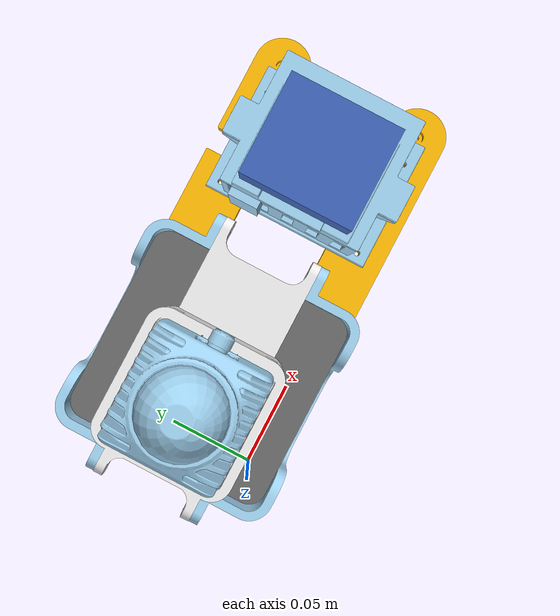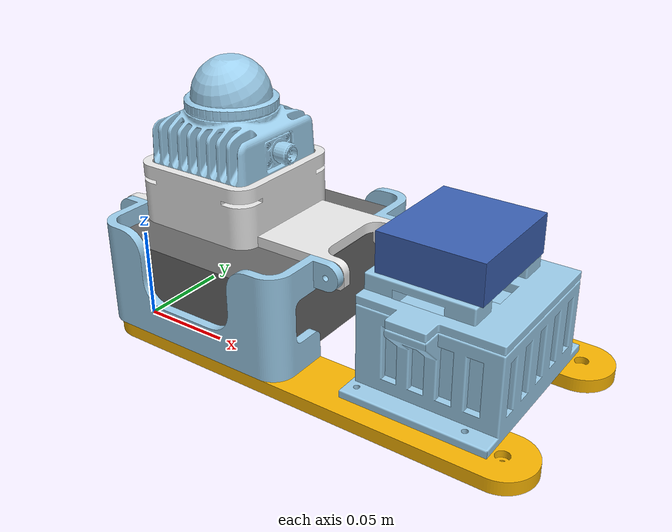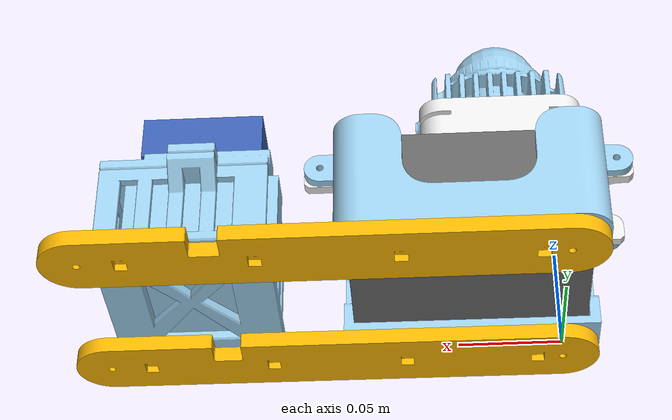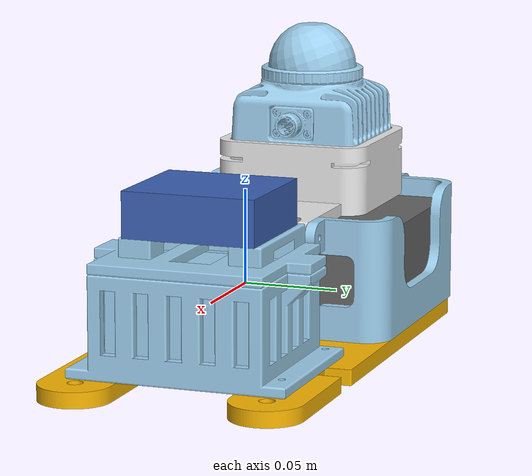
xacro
<robot xmlns:xacro="http://www.ros.org/wiki/xacro" name="onshape">
<!-- Generated using onshape-to-robot -->
    <link name="nuc_top">
        <inertial>
            <origin xyz="0.0900752 0.04556 0.0470702" rpy="0 0 0"/>
            <mass value="1.55055"/>
            <inertia ixx="0.00269047" ixy="7.5858e-05" ixz="0.000944732" iyy="0.00919912" iyz="-1.44756e-05" izz="0.00855227"/>
        </inertial>
        <!-- Part nuc_top -->
        <visual>
            <origin xyz="-0.018 0.0175 0.059" rpy="3.14159 -0 0"/>
            <geometry>
                <mesh filename="file://$(find legged_perceptive_description)/urdf/nuc_and_lidar/nuc_top.stl"/>
            </geometry>
            <material name="nuc_top_material">
                <color rgba="0.917647 0.917647 0.917647 1.0"/>
            </material>
        </visual>
        <collision>
            <origin xyz="-0.018 0.0175 0.059" rpy="3.14159 -0 0"/>
            <geometry>
                <mesh filename="file://$(find legged_perceptive_description)/urdf/nuc_and_lidar/nuc_top.stl"/>
            </geometry>
        </collision>
        <!-- Part mid-360_lidar_unit -->
        <visual>
            <origin xyz="0.027 0.0460004 0.0816128" rpy="6.12323e-17 4.20935e-14 -1.71018e-46"/>
            <geometry>
                <mesh filename="file://$(find legged_perceptive_description)/urdf/nuc_and_lidar/mid_360_lidar_unit.stl"/>
            </geometry>
            <material name="mid-360_lidar_unit_material">
                <color rgba="0.615686 0.811765 0.929412 1.0"/>
            </material>
        </visual>
        <collision>
            <origin xyz="0.027 0.0460004 0.0816128" rpy="6.12323e-17 4.20935e-14 -1.71018e-46"/>
            <geometry>
                <mesh filename="file://$(find legged_perceptive_description)/urdf/nuc_and_lidar/mid_360_lidar_unit.stl"/>
            </geometry>
        </collision>
        <!-- Part voltageregulatormount -->
        <visual>
            <origin xyz="0.1705 0.046 0.049" rpy="1.01161e-46 -2.30521e-16 -3.14159"/>
            <geometry>
                <mesh filename="file://$(find legged_perceptive_description)/urdf/nuc_and_lidar/voltageregulatormount.stl"/>
            </geometry>
            <material name="voltageregulatormount_material">
                <color rgba="0.615686 0.811765 0.929412 1.0"/>
            </material>
        </visual>
        <collision>
            <origin xyz="0.1705 0.046 0.049" rpy="1.01161e-46 -2.30521e-16 -3.14159"/>
            <geometry>
                <mesh filename="file://$(find legged_perceptive_description)/urdf/nuc_and_lidar/voltageregulatormount.stl"/>
            </geometry>
        </collision>
        <!-- Part nuc -->
        <visual>
            <origin xyz="0.044 0.046 0.05" rpy="3.14159 -0 -1.5708"/>
            <geometry>
                <mesh filename="file://$(find legged_perceptive_description)/urdf/nuc_and_lidar/nuc.stl"/>
            </geometry>
            <material name="nuc_material">
                <color rgba="0.4 0.4 0.4 1.0"/>
            </material>
        </visual>
        <collision>
            <origin xyz="0.044 0.046 0.05" rpy="3.14159 -0 -1.5708"/>
            <geometry>
                <mesh filename="file://$(find legged_perceptive_description)/urdf/nuc_and_lidar/nuc.stl"/>
            </geometry>
        </collision>
        <!-- Part nuc_enclosure_side -->
        <visual>
            <origin xyz="0.1175 0.092 -2.60209e-18" rpy="0 -0 3.14159"/>
            <geometry>
                <mesh filename="file://$(find legged_perceptive_description)/urdf/nuc_and_lidar/nuc_enclosure_side.stl"/>
            </geometry>
            <material name="nuc_enclosure_side_material">
                <color rgba="0.615686 0.811765 0.929412 1.0"/>
            </material>
        </visual>
        <collision>
            <origin xyz="0.1175 0.092 -2.60209e-18" rpy="0 -0 3.14159"/>
            <geometry>
                <mesh filename="file://$(find legged_perceptive_description)/urdf/nuc_and_lidar/nuc_enclosure_side.stl"/>
            </geometry>
        </collision>
        <!-- Part nuc_enclosure_side_2 -->
        <visual>
            <origin xyz="-0.0305 5.58794e-11 0" rpy="0 -0 0"/>
            <geometry>
                <mesh filename="file://$(find legged_perceptive_description)/urdf/nuc_and_lidar/nuc_enclosure_side.stl"/>
            </geometry>
            <material name="nuc_enclosure_side_2_material">
                <color rgba="0.615686 0.811765 0.929412 1.0"/>
            </material>
        </visual>
        <collision>
            <origin xyz="-0.0305 5.58794e-11 0" rpy="0 -0 0"/>
            <geometry>
                <mesh filename="file://$(find legged_perceptive_description)/urdf/nuc_and_lidar/nuc_enclosure_side.stl"/>
            </geometry>
        </collision>
        <!-- Part mounting_rail -->
        <visual>
            <origin xyz="0.10975 0.0745 -2.60209e-18" rpy="-6.16298e-33 -1.2326e-32 -2.77556e-17"/>
            <geometry>
                <mesh filename="file://$(find legged_perceptive_description)/urdf/nuc_and_lidar/mounting_rail.stl"/>
            </geometry>
            <material name="mounting_rail_material">
                <color rgba="0.980392 0.713725 0.00392157 1.0"/>
            </material>
        </visual>
        <collision>
            <origin xyz="0.10975 0.0745 -2.60209e-18" rpy="-6.16298e-33 -1.2326e-32 -2.77556e-17"/>
            <geometry>
                <mesh filename="file://$(find legged_perceptive_description)/urdf/nuc_and_lidar/mounting_rail.stl"/>
            </geometry>
        </collision>
        <!-- Part psu -->
        <visual>
            <origin xyz="0.169134 0.046 0.063" rpy="-2.30521e-16 -1.01161e-46 -1.5708"/>
            <geometry>
                <mesh filename="file://$(find legged_perceptive_description)/urdf/nuc_and_lidar/psu.stl"/>
            </geometry>
            <material name="psu_material">
                <color rgba="0.231373 0.380392 0.705882 1.0"/>
            </material>
        </visual>
        <collision>
            <origin xyz="0.169134 0.046 0.063" rpy="-2.30521e-16 -1.01161e-46 -1.5708"/>
            <geometry>
                <mesh filename="file://$(find legged_perceptive_description)/urdf/nuc_and_lidar/psu.stl"/>
            </geometry>
        </collision>
        <!-- Part battery -->
        <visual>
            <origin xyz="0.1725 0.008 0.026" rpy="-1.5708 2.30521e-16 0"/>
            <geometry>
                <mesh filename="file://$(find legged_perceptive_description)/urdf/nuc_and_lidar/battery.stl"/>
            </geometry>
            <material name="battery_material">
                <color rgba="0.615686 0.811765 0.929412 1.0"/>
            </material>
        </visual>
        <collision>
            <origin xyz="0.1725 0.008 0.026" rpy="-1.5708 2.30521e-16 0"/>
            <geometry>
                <mesh filename="file://$(find legged_perceptive_description)/urdf/nuc_and_lidar/battery.stl"/>
            </geometry>
        </collision>
        <!-- Part frame -->
        <visual>
            <origin xyz="0.027 0.0460605 0.1336" rpy="-3.14159 2.43709e-17 3.14159"/>
            <geometry>
                <mesh filename="file://$(find legged_perceptive_description)/urdf/nuc_and_lidar/frame.stl"/>
            </geometry>
            <material name="frame_material">
                <color rgba="0.615686 0.811765 0.929412 1.0"/>
            </material>
        </visual>
        <collision>
            <origin xyz="0.027 0.0460605 0.1336" rpy="-3.14159 2.43709e-17 3.14159"/>
            <geometry>
                <mesh filename="file://$(find legged_perceptive_description)/urdf/nuc_and_lidar/frame.stl"/>
            </geometry>
        </collision>
        <!-- Part mounting_rail_2 -->
        <visual>
            <origin xyz="0.10975 -0.0175 0" rpy="0 -0 0"/>
            <geometry>
                <mesh filename="file://$(find legged_perceptive_description)/urdf/nuc_and_lidar/mounting_rail.stl"/>
            </geometry>
            <material name="mounting_rail_2_material">
                <color rgba="0.980392 0.713725 0.00392157 1.0"/>
            </material>
        </visual>
        <collision>
            <origin xyz="0.10975 -0.0175 0" rpy="0 -0 0"/>
            <geometry>
                <mesh filename="file://$(find legged_perceptive_description)/urdf/nuc_and_lidar/mounting_rail.stl"/>
            </geometry>
        </collision>
        <!-- Part batterymount -->
        <visual>
            <origin xyz="0.1745 0.046 -6.93889e-18" rpy="-2.30521e-16 -0 -1.5708"/>
            <geometry>
                <mesh filename="file://$(find legged_perceptive_description)/urdf/nuc_and_lidar/batterymount.stl"/>
            </geometry>
            <material name="batterymount_material">
                <color rgba="0.615686 0.811765 0.929412 1.0"/>
            </material>
        </visual>
        <collision>
            <origin xyz="0.1745 0.046 -6.93889e-18" rpy="-2.30521e-16 -0 -1.5708"/>
            <geometry>
                <mesh filename="file://$(find legged_perceptive_description)/urdf/nuc_and_lidar/batterymount.stl"/>
            </geometry>
        </collision>
    </link>
    <!-- Frame livox (dummy link + fixed joint) -->
</robot>
